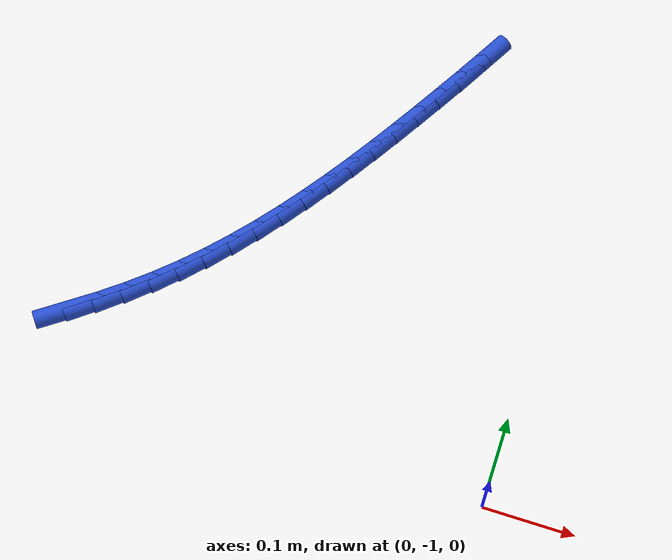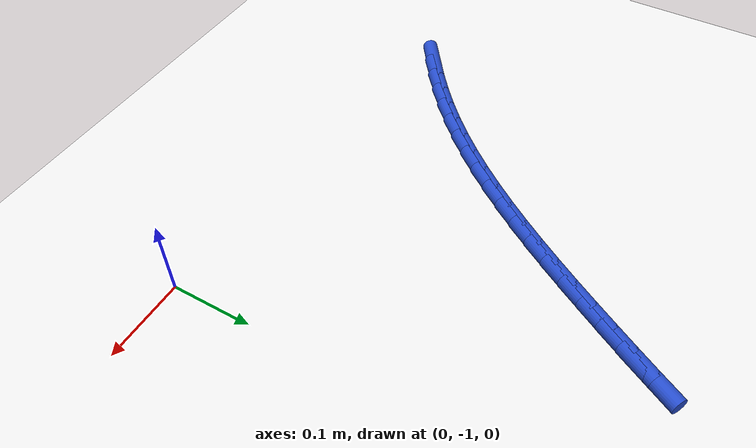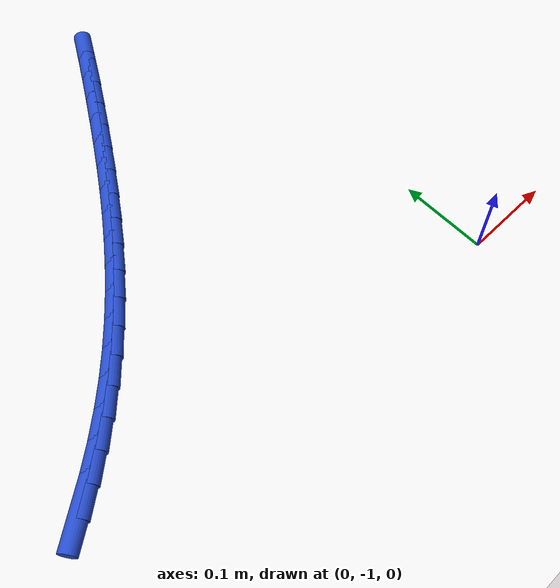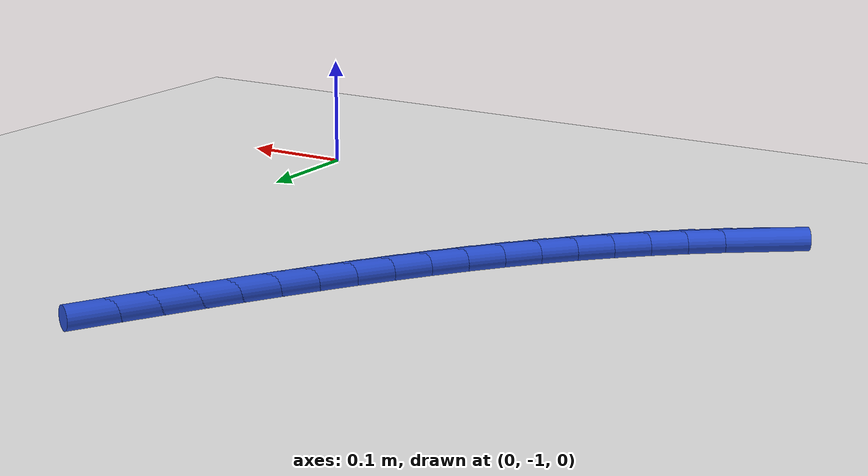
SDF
<sdf version="1.6">
 <world name="default">
  <model name="ground_plane">
   <static>1</static>
   <link name="link">
    <collision name="collision">
     <geometry><plane><normal>0 0 1</normal><size>100 100</size></plane></geometry>
     <surface><friction><ode><mu>100</mu><mu2>50</mu2></ode></friction></surface>
    </collision>
    <visual name="visual">
     <cast_shadows>0</cast_shadows>
     <geometry><plane><normal>0 0 1</normal><size>100 100</size></plane></geometry>
     <material>
      <script><uri>file://media/materials/scripts/gazebo.material</uri><name>Gazebo/WhiteGlow</name></script>
     </material>
    </visual>
   </link>
  </model>
  <model name="line">
   <link name="link_176">
    <pose>-0.478648580759938 -0.9303945817020228 0.01 0 1.57 0.627759301668129</pose>
    <collision name="collision">
     <geometry><cylinder><radius>0.01</radius><length>0.08</length></cylinder></geometry>
    </collision>
    <visual name="visual">
     <material>
      <script><name>Gazebo/Blue</name><uri>file://media/materials/scripts/gazebo.material</uri></script>
     </material>
     <geometry><cylinder><radius>0.01</radius><length>0.08</length></cylinder></geometry>
    </visual>
   </link>
   <link name="link_177">
    <pose>-0.4529212920706184 -0.9117245854767736 0.01 0 1.57 0.6684825547672382</pose>
    <collision name="collision">
     <geometry><cylinder><radius>0.01</radius><length>0.08</length></cylinder></geometry>
    </collision>
    <visual name="visual">
     <material>
      <script><name>Gazebo/Blue</name><uri>file://media/materials/scripts/gazebo.material</uri></script>
     </material>
     <geometry><cylinder><radius>0.01</radius><length>0.08</length></cylinder></geometry>
    </visual>
   </link>
   <link name="link_178">
    <pose>-0.42802840932899017 -0.8920645042323727 0.01 0 1.57 0.7099303481009311</pose>
    <collision name="collision">
     <geometry><cylinder><radius>0.01</radius><length>0.08</length></cylinder></geometry>
    </collision>
    <visual name="visual">
     <material>
      <script><name>Gazebo/Blue</name><uri>file://media/materials/scripts/gazebo.material</uri></script>
     </material>
     <geometry><cylinder><radius>0.01</radius><length>0.08</length></cylinder></geometry>
    </visual>
   </link>
   <link name="link_179">
    <pose>-0.40402243927943077 -0.8714335920272496 0.01 0 1.57 0.7521720212057421</pose>
    <collision name="collision">
     <geometry><cylinder><radius>0.01</radius><length>0.08</length></cylinder></geometry>
    </collision>
    <visual name="visual">
     <material>
      <script><name>Gazebo/Blue</name><uri>file://media/materials/scripts/gazebo.material</uri></script>
     </material>
     <geometry><cylinder><radius>0.01</radius><length>0.08</length></cylinder></geometry>
    </visual>
   </link>
   <link name="link_180">
    <pose>-0.3809558886663171 -0.8498511029198327 0.01 0 1.57 0.7946747848993536</pose>
    <collision name="collision">
     <geometry><cylinder><radius>0.01</radius><length>0.08</length></cylinder></geometry>
    </collision>
    <visual name="visual">
     <material>
      <script><name>Gazebo/Blue</name><uri>file://media/materials/scripts/gazebo.material</uri></script>
     </material>
     <geometry><cylinder><radius>0.01</radius><length>0.08</length></cylinder></geometry>
    </visual>
   </link>
   <link name="link_181">
    <pose>-0.35886318998459654 -0.8273446630420529 0.01 0 1.57 0.8346495669875054</pose>
    <collision name="collision">
     <geometry><cylinder><radius>0.01</radius><length>0.08</length></cylinder></geometry>
    </collision>
    <visual name="visual">
     <material>
      <script><name>Gazebo/Blue</name><uri>file://media/materials/scripts/gazebo.material</uri></script>
     </material>
     <geometry><cylinder><radius>0.01</radius><length>0.08</length></cylinder></geometry>
    </visual>
   </link>
   <link name="link_182">
    <pose>-0.3376945144839702 -0.8039809287130323 0.01 0 1.57 0.8711928192754448</pose>
    <collision name="collision">
     <geometry><cylinder><radius>0.01</radius><length>0.08</length></cylinder></geometry>
    </collision>
    <visual name="visual">
     <material>
      <script><name>Gazebo/Blue</name><uri>file://media/materials/scripts/gazebo.material</uri></script>
     </material>
     <geometry><cylinder><radius>0.01</radius><length>0.08</length></cylinder></geometry>
    </visual>
   </link>
   <link name="link_183">
    <pose>-0.31737549802780024 -0.7798379211530251 0.01 0 1.57 0.9042490874749607</pose>
    <collision name="collision">
     <geometry><cylinder><radius>0.01</radius><length>0.08</length></cylinder></geometry>
    </collision>
    <visual name="visual">
     <material>
      <script><name>Gazebo/Blue</name><uri>file://media/materials/scripts/gazebo.material</uri></script>
     </material>
     <geometry><cylinder><radius>0.01</radius><length>0.08</length></cylinder></geometry>
    </visual>
   </link>
   <link name="link_184">
    <pose>-0.2978317736794297 -0.75499366287927 0.01 0 1.57 0.9338056909596247</pose>
    <collision name="collision">
     <geometry><cylinder><radius>0.01</radius><length>0.08</length></cylinder></geometry>
    </collision>
    <visual name="visual">
     <material>
      <script><name>Gazebo/Blue</name><uri>file://media/materials/scripts/gazebo.material</uri></script>
     </material>
     <geometry><cylinder><radius>0.01</radius><length>0.08</length></cylinder></geometry>
    </visual>
   </link>
   <link name="link_185">
    <pose>-0.2789889745021998 -0.7295261764090036 0.01 0 1.57 0.9598805877064678</pose>
    <collision name="collision">
     <geometry><cylinder><radius>0.01</radius><length>0.08</length></cylinder></geometry>
    </collision>
    <visual name="visual">
     <material>
      <script><name>Gazebo/Blue</name><uri>file://media/materials/scripts/gazebo.material</uri></script>
     </material>
     <geometry><cylinder><radius>0.01</radius><length>0.08</length></cylinder></geometry>
    </visual>
   </link>
   <link name="link_186">
    <pose>-0.2607727335594523 -0.7035134842594629 0.01 0 1.57 0.9825114286327941</pose>
    <collision name="collision">
     <geometry><cylinder><radius>0.01</radius><length>0.08</length></cylinder></geometry>
    </collision>
    <visual name="visual">
     <material>
      <script><name>Gazebo/Blue</name><uri>file://media/materials/scripts/gazebo.material</uri></script>
     </material>
     <geometry><cylinder><radius>0.01</radius><length>0.08</length></cylinder></geometry>
    </visual>
   </link>
   <link name="link_187">
    <pose>-0.24310868391452933 -0.6770336089478854 0.01 0 1.57 1.0017460930779933</pose>
    <collision name="collision">
     <geometry><cylinder><radius>0.01</radius><length>0.08</length></cylinder></geometry>
    </collision>
    <visual name="visual">
     <material>
      <script><name>Gazebo/Blue</name><uri>file://media/materials/scripts/gazebo.material</uri></script>
     </material>
     <geometry><cylinder><radius>0.01</radius><length>0.08</length></cylinder></geometry>
    </visual>
   </link>
   <link name="link_188">
    <pose>-0.2259224586307727 -0.6501645729915085 0.01 0 1.57 1.017634817799439</pose>
    <collision name="collision">
     <geometry><cylinder><radius>0.01</radius><length>0.08</length></cylinder></geometry>
    </collision>
    <visual name="visual">
     <material>
      <script><name>Gazebo/Blue</name><uri>file://media/materials/scripts/gazebo.material</uri></script>
     </material>
     <geometry><cylinder><radius>0.01</radius><length>0.08</length></cylinder></geometry>
    </visual>
   </link>
   <link name="link_189">
    <pose>-0.20913969077152392 -0.6229843989075687 0.01 0 1.57 1.0302238567266893</pose>
    <collision name="collision">
     <geometry><cylinder><radius>0.01</radius><length>0.08</length></cylinder></geometry>
    </collision>
    <visual name="visual">
     <material>
      <script><name>Gazebo/Blue</name><uri>file://media/materials/scripts/gazebo.material</uri></script>
     </material>
     <geometry><cylinder><radius>0.01</radius><length>0.08</length></cylinder></geometry>
    </visual>
   </link>
   <link name="link_190">
    <pose>-0.19268601340012556 -0.5955711092133045 0.01 0 1.57 1.0395505151908937</pose>
    <collision name="collision">
     <geometry><cylinder><radius>0.01</radius><length>0.08</length></cylinder></geometry>
    </collision>
    <visual name="visual">
     <material>
      <script><name>Gazebo/Blue</name><uri>file://media/materials/scripts/gazebo.material</uri></script>
     </material>
     <geometry><cylinder><radius>0.01</radius><length>0.08</length></cylinder></geometry>
    </visual>
   </link>
   <link name="link_191">
    <pose>-0.1764870595799191 -0.5680027264259524 0.01 0 1.57 1.0462780892930417</pose>
    <collision name="collision">
     <geometry><cylinder><radius>0.01</radius><length>0.08</length></cylinder></geometry>
    </collision>
    <visual name="visual">
     <material>
      <script><name>Gazebo/Blue</name><uri>file://media/materials/scripts/gazebo.material</uri></script>
     </material>
     <geometry><cylinder><radius>0.01</radius><length>0.08</length></cylinder></geometry>
    </visual>
   </link>
   <link name="link_192">
    <pose>-0.16048551662002927 -0.5403459986982655 0.01 0 1.57 1.0547070804729628</pose>
    <collision name="collision">
     <geometry><cylinder><radius>0.01</radius><length>0.08</length></cylinder></geometry>
    </collision>
    <visual name="visual">
     <material>
      <script><name>Gazebo/Blue</name><uri>file://media/materials/scripts/gazebo.material</uri></script>
     </material>
     <geometry><cylinder><radius>0.01</radius><length>0.08</length></cylinder></geometry>
    </visual>
   </link>
   <link name="link_193">
    <pose>-0.14473846473432705 -0.5125920503577642 0.01 0 1.57 1.0666243258409627</pose>
    <collision name="collision">
     <geometry><cylinder><radius>0.01</radius><length>0.08</length></cylinder></geometry>
    </collision>
    <visual name="visual">
     <material>
      <script><name>Gazebo/Blue</name><uri>file://media/materials/scripts/gazebo.material</uri></script>
     </material>
     <geometry><cylinder><radius>0.01</radius><length>0.08</length></cylinder></geometry>
    </visual>
   </link>
  </model>
 </world>
</sdf>
